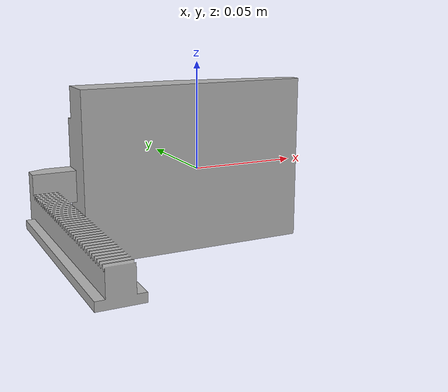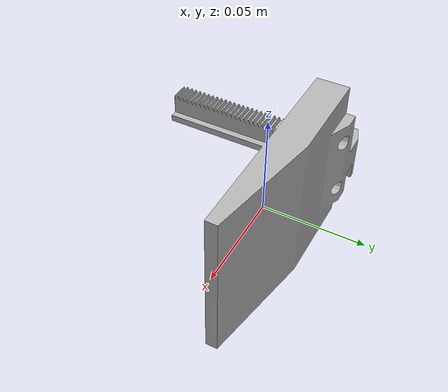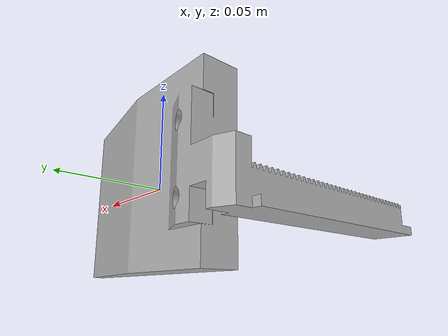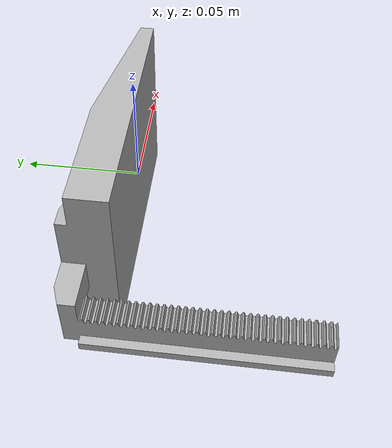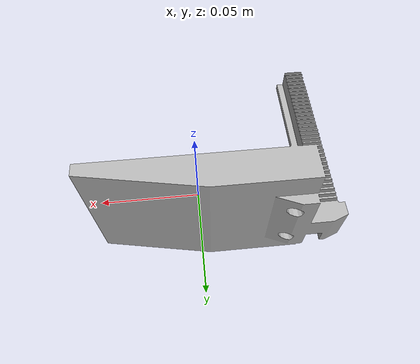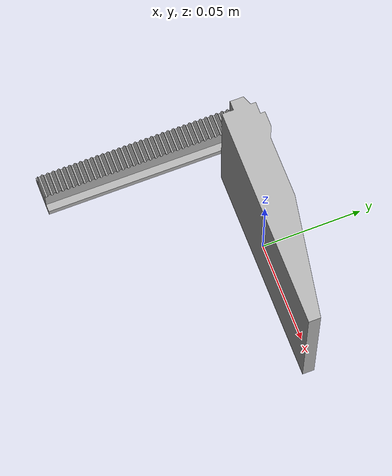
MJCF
<mujoco model="GRIPPER_LEFT">
  <default>
    <default class="visual">
      <geom group="2" type="mesh" contype="0" conaffinity="0"/>
    </default>
    <default class="collision">
      <geom group="3" type="mesh"/>
    </default>
  </default>
  <asset>
    <material name="mtl_GRIPPER_LEFT" specular="0.20000000000000004" shininess="1.0" rgba="0.69803922 0.69803922 0.69803922 1.0"/>
    <mesh file="GRIPPER_LEFT.obj"/>
  </asset>
  <worldbody>
    <body name="GRIPPER_LEFT">
      <geom material="mtl_GRIPPER_LEFT" mesh="GRIPPER_LEFT" class="visual"/>
      <geom mesh="GRIPPER_LEFT" class="collision"/>
    </body>
  </worldbody>
</mujoco>
